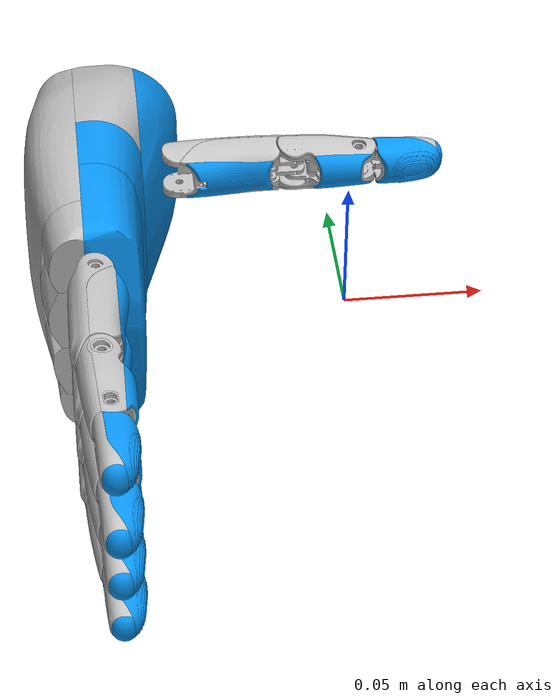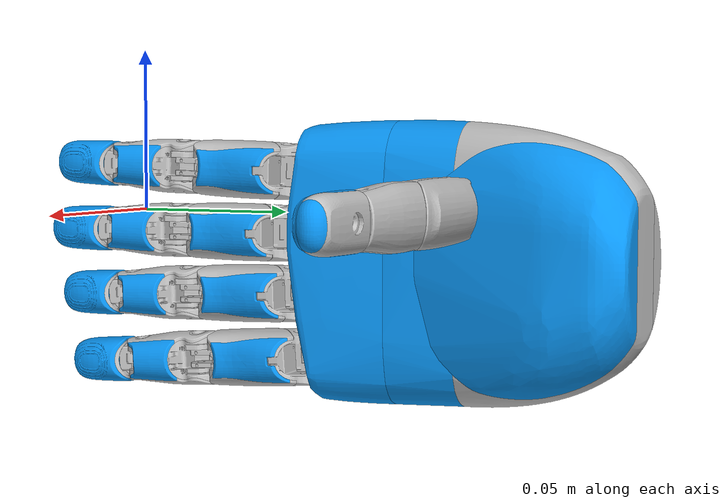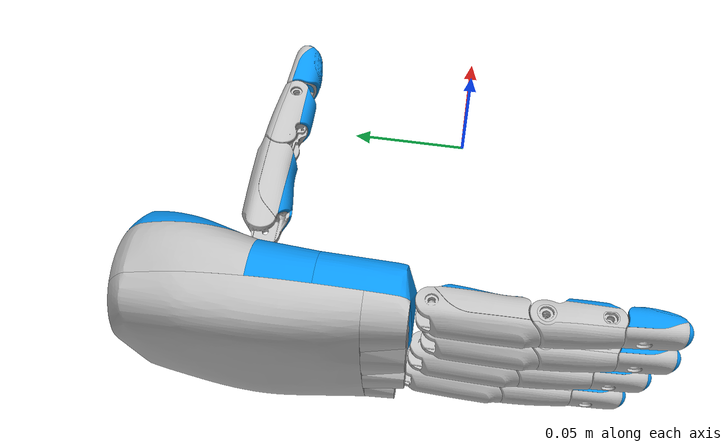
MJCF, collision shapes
<mujoco model="URDF_speedhand_0618">

  <compiler angle="radian"/>
  <option integrator="implicitfast" cone="elliptic" noslip_iterations="5" noslip_tolerance="0"/>
  <default>
    <joint damping="0.01" armature="0.0001" frictionloss="0.01"/>
      <geom solref="0.02 0.8" solimp="0.9 0.95 0.001" friction="0.8 0.05 0.005"/>
  </default>
<size njmax="10000" nconmax="5000"/>

  <asset>
    <mesh name="base_link" file="base_link.STL"/>
    <mesh name="RFF-joint1-link" file="RFF-joint1-link.STL"/>
    <mesh name="RFF-joint2-link" file="RFF-joint2-link.STL"/>
    <mesh name="RFF-joint3-link" file="RFF-joint3-link.STL"/>
    <mesh name="tip" file="tip.STL"/>
    <mesh name="nail" file="nail.STL"/>
    <mesh name="j1_0" file="j1_0.stl"/>
    <mesh name="j1_1" file="j1_1.stl"/>
    <mesh name="j1_2" file="j1_2.stl"/>
    <mesh name="j1_3" file="j1_3.STL"/>
    <mesh name="j2_0" file="j2_0.stl"/>
    <mesh name="j2_1" file="j2_1.stl"/>
    <mesh name="j2_2" file="j2_2.stl"/>
    <mesh name="j2_3" file="j2_3.STL"/>
    <mesh name="j3_1" file="j3_1.stl"/>
    <mesh name="j3_2" file="j3_2.stl"/>
    <mesh name="part_0" file="part_0.stl"/>
    <mesh name="part_1" file="part_1.stl"/>
    <mesh name="part_2" file="part_2.stl"/>
    <mesh name="part_3" file="part_3.stl"/>
    <mesh name="part_5" file="part_5.stl"/>
    <mesh name="part_11" file="part_11.stl"/>
    <mesh name="part_12" file="part_12.stl"/>
    <mesh name="part_15" file="part_15.stl"/>
    <mesh name="part_18" file="part_18.stl"/>
  </asset>

<extension>

  <plugin plugin="mujoco.pid">
    <instance name="pid_RTh">
        <config key="kp" value="24"/>
        <config key="ki" value="4.0"/>
        <config key="kd" value="0.1"/>
        <config key="imax" value="0.2"/>
        <config key="slewmax" value="6.28318"/>
    </instance>
  </plugin>

  <plugin plugin="mujoco.pid">
    <instance name="pid_RFF">
        <config key="kp" value="8"/>
        <config key="ki" value="4.0"/>
        <config key="kd" value="0.1"/>
        <config key="imax" value="0.2"/>
        <config key="slewmax" value="6.28318"/>
    </instance>
  </plugin>

  <plugin plugin="mujoco.pid">
    <instance name="pid_RMF">
        <config key="kp" value="8"/>
        <config key="ki" value="4.0"/>
        <config key="kd" value="0.1"/>
        <config key="imax" value="0.2"/>
        <config key="slewmax" value="6.28318"/>
    </instance>
  </plugin>

  <plugin plugin="mujoco.pid">
    <instance name="pid_RRF">
        <config key="kp" value="8"/>
        <config key="ki" value="4.0"/>
        <config key="kd" value="0.1"/>
        <config key="imax" value="0.2"/>
        <config key="slewmax" value="6.28318"/>
    </instance>
  </plugin>

  <plugin plugin="mujoco.pid">
    <instance name="pid_RLF">
        <config key="kp" value="8"/>
        <config key="ki" value="4.0"/>
        <config key="kd" value="0.1"/>
        <config key="imax" value="0.2"/>
        <config key="slewmax" value="6.28318"/>
    </instance>
  </plugin>

</extension>

  <worldbody>
    <body name="tcp">
      <freejoint/>
      <body name="translate" pos="-0.08 0.14 -0.02">
        <body gravcomp="1" name="base" pos="-0.204141 0.242939 -0.004">
          <geom type="mesh" rgba="0.752941 0.752941 0.752941 1" mesh="base_link" contype="0" conaffinity="0" group="0"/>
          <geom type="mesh" rgba="0.035  0.586 0.953 1" mesh="part_0" mass="0" name="pad1"/>
          <geom type="mesh" rgba="0.035  0.586 0.953 1" mesh="part_1" mass="0" name="pad2"/>
          <geom type="mesh" rgba="0.035  0.586 0.953 1" mesh="part_2" mass="0" name="pad3"/>
          <geom type="mesh" rgba="0.752941 0.752941 0.752941 0" mesh="part_3" group="3" mass="0"/>
          <geom type="mesh" rgba="0.752941 0.752941 0.752941 0" mesh="part_5" group="3" mass="0"/>
          <geom type="mesh" rgba="0.752941 0.752941 0.752941 0" mesh="part_11" group="3" mass="0"/>
          <geom type="mesh" rgba="0.752941 0.752941 0.752941 0" mesh="part_12" group="3" mass="0"/>
          <geom type="mesh" rgba="0.752941 0.752941 0.752941 0" mesh="part_15" group="3" mass="0"/>
          <geom type="mesh" rgba="0.752941 0.752941 0.752941 0" mesh="part_18" group="3" mass="0"/>

          <body gravcomp="1" name="RTh-joint1-link" pos="0.23099 -0.29978 0.017385" quat="-2.59734e-06 -0.707105 0.707108 2.59735e-06" >
            <inertial pos="-0.00052377 -0.019871 -0.0057348" quat="0.709096 0.704783 -0.0151904 -0.0152259" mass="0.0086971" diaginertia="1.77515e-06 1.59984e-06 5.58982e-07"/>
            <joint name="RTh-joint1" pos="0 0 0" axis="0 0 1" range="0 1.3"    />
            <geom type="mesh" rgba="0.752941 0.752941 0.752941 1" mesh="RFF-joint1-link" contype="0" conaffinity="0" group="0"/>
            <geom type="mesh"  rgba="0.035  0.586 0.953 1" name="ft1_a" mesh="j1_0" mass="0"/>
            <geom type="mesh"  rgba="0.752941 0.752941 0.752941 1" mesh="j1_1" mass="0" group="3"/>
            <geom type="mesh"  rgba="0.752941 0.752941 0.752941 1" mesh="j1_2" mass="0" group="3"/>
            <geom type="mesh"  rgba="0.752941 0.752941 0.752941 1" mesh="j1_3" mass="0" group="3"/>
            <body gravcomp="1" name="RTh-joint2-link" pos="0 -0.044835 -0.0022002" quat="0.999984 0 0 -0.00563597">
              <inertial pos="0.001287 -0.012538 -0.0035807" quat="0.713567 0.697486 0.0497241 0.0431685" mass="0.0053861" diaginertia="7.01461e-07 5.92479e-07 3.03151e-07"/>
              <joint name="RTh-joint2" pos="0 0 0" axis="0 0 1" range="0 1.57"  />
              <geom type="mesh" rgba="0.752941 0.752941 0.752941 1" mesh="RFF-joint2-link" contype="0" conaffinity="0" group="0"/>
              <geom type="mesh"  rgba="0.035  0.586 0.953 1" name="ft1_b" mesh="j2_0" mass="0"/>
              <geom type="mesh"  rgba="0.752941 0.752941 0.752941 1" mesh="j2_1" mass="0" group="3"/>
              <geom type="mesh"  rgba="0.752941 0.752941 0.752941 1" mesh="j2_2" mass="0" group="3"/>
              <geom type="mesh"  rgba="0.752941 0.752941 0.752941 1" mesh="j2_3" mass="0" group="3"/>
              <body gravcomp="1" name="RTh-joint3-link" pos="0.0022421 -0.0249 0.00010298" quat="0.99997 0 0 0.00771292">
                <inertial pos="0.00015718 -0.017333 -0.0036024" quat="0.707197 0.707008 0.0025457 0.00254638" mass="0.0035954" diaginertia="2.43228e-07 1.888e-07 9.66934e-08"/>
                <joint name="RTh-joint3" pos="0 0 0" axis="0 0 1" range="0 1.57"  />
                <geom type="mesh" rgba="0.752941 0.752941 0.752941 1" mesh="RFF-joint3-link" contype="0" conaffinity="0" group="0"/>
                <geom type="mesh" rgba="0.035  0.586 0.953 1" mesh="tip" name="ft1" mass="0"/>
                <geom type="mesh" rgba="0.035  0.586 0.953 1" mesh="j3_1" name="ft1_c" mass="0"/>
                <geom type="mesh" rgba="0.752941 0.752941 0.752941 1" mesh="j3_2" mass="0" group="3"/>
              </body>
            </body>
          </body>

          <body gravcomp="1" name="RFF-joint1-link" pos="0.19574 -0.37808 0.040085" quat="0.999848 -0.0174526 0 0" >
            <inertial pos="-0.00052376 -0.019871 -0.0057348" quat="0.709096 0.704783 -0.0151894 -0.0152269" mass="0.0086971" diaginertia="1.77515e-06 1.59984e-06 5.58982e-07"/>
            <joint name="RFF-joint1" pos="0 0 0" axis="0 0 1" range="0  1.3"   />
            <geom type="mesh" rgba="0.752941 0.752941 0.752941 1" mesh="RFF-joint1-link" contype="0" conaffinity="0" group="0"/>
            <geom type="mesh"  rgba="0.035  0.586 0.953 1" name="ft2_a" mesh="j1_0" mass="0"/>
            <geom type="mesh"  rgba="0.752941 0.752941 0.752941 1" mesh="j1_1" mass="0" group="3"/>
            <geom type="mesh"  rgba="0.752941 0.752941 0.752941 1" mesh="j1_2" mass="0" group="3"/>
            <geom type="mesh"  rgba="0.752941 0.752941 0.752941 1" mesh="j1_3" mass="0" group="3"/>
            <body gravcomp="1" name="RFF-joint2-link" pos="0 -0.044835 -0.0022002" quat="0.999984 0 0 -0.00563597">
              <inertial pos="0.001287 -0.012538 -0.0035807" quat="0.713567 0.697486 0.0497241 0.0431685" mass="0.0053861" diaginertia="7.01461e-07 5.92479e-07 3.03151e-07"/>
              <joint name="RFF-joint2" pos="0 0 0" axis="0 0 1" range="0 1.57"  />
              <geom type="mesh" rgba="0.752941 0.752941 0.752941 1" mesh="RFF-joint2-link" contype="0" conaffinity="0" group="0"/>
              <geom type="mesh"  rgba="0.035  0.586 0.953 1" name="ft2_b" mesh="j2_0" mass="0"/>
              <geom type="mesh"  rgba="0.752941 0.752941 0.752941 1" mesh="j2_1" mass="0" group="3"/>
              <geom type="mesh"  rgba="0.752941 0.752941 0.752941 1" mesh="j2_2" mass="0" group="3"/>
              <geom type="mesh"  rgba="0.752941 0.752941 0.752941 1" mesh="j2_3" mass="0" group="3"/>
              <body gravcomp="1" name="RFF-joint3-link" pos="0.0022421 -0.0249 0.00010298" quat="0.99997 0 0 0.00771292">
                <inertial pos="0.00015718 -0.017333 -0.0036024" quat="0.707197 0.707008 0.0025457 0.00254638" mass="0.0035954" diaginertia="2.43228e-07 1.888e-07 9.66934e-08"/>
                <joint name="RFF-joint3" pos="0 0 0" axis="0 0 1" range="0 1.57"  />
                <geom type="mesh" rgba="0.752941 0.752941 0.752941 1" mesh="RFF-joint3-link" contype="0" conaffinity="0" group="0"/>
                <geom type="mesh" rgba="0.035  0.586 0.953 1" mesh="tip" name="ft2" mass="0"/>
                <geom type="mesh" rgba="0.035  0.586 0.953 1" mesh="j3_1" name="ft2_c" mass="0"/>
                <geom type="mesh" rgba="0.752941 0.752941 0.752941 1" mesh="j3_2" mass="0" group="3"/>
              </body>
            </body>
          </body>

          <body gravcomp="1" name="RMF-joint1-link" pos="0.19574 -0.38138 0.0167">
            <inertial pos="-0.00052376 -0.019871 -0.0057348" quat="0.709096 0.704783 -0.0151894 -0.0152269" mass="0.0086971" diaginertia="1.77515e-06 1.59984e-06 5.58982e-07"/>
            <joint name="RMF-joint1" pos="0 0 0" axis="0 0 1" range="0  1.3"  />
            <geom type="mesh" rgba="0.752941 0.752941 0.752941 1" mesh="RFF-joint1-link" contype="0" conaffinity="0" group="0"/>
            <geom type="mesh"  rgba="0.035  0.586 0.953 1" name="ft3_a" mesh="j1_0" mass="0"/>
            <geom type="mesh"  rgba="0.752941 0.752941 0.752941 1" mesh="j1_1" mass="0" group="3"/>
            <geom type="mesh"  rgba="0.752941 0.752941 0.752941 1" mesh="j1_2" mass="0" group="3"/>
            <geom type="mesh"  rgba="0.752941 0.752941 0.752941 1" mesh="j1_3" mass="0" group="3"/>
            <body gravcomp="1" name="RMF-joint2-link" pos="0 -0.044835 -0.0022002" quat="0.999984 0 0 -0.00563597">
              <inertial pos="0.001287 -0.012538 -0.0035807" quat="0.713567 0.697486 0.0497241 0.0431685" mass="0.0053861" diaginertia="7.01461e-07 5.92479e-07 3.03151e-07"/>
              <joint name="RMF-joint2" pos="0 0 0" axis="0 0 1" range="0 1.57"  />
              <geom type="mesh" rgba="0.752941 0.752941 0.752941 1" mesh="RFF-joint2-link" contype="0" conaffinity="0" group="0"/>
              <geom type="mesh"  rgba="0.035  0.586 0.953 1" name="ft3_b" mesh="j2_0" mass="0"/>
              <geom type="mesh"  rgba="0.752941 0.752941 0.752941 1" mesh="j2_1" mass="0" group="3"/>
              <geom type="mesh"  rgba="0.752941 0.752941 0.752941 1" mesh="j2_2" mass="0" group="3"/>
              <geom type="mesh"  rgba="0.752941 0.752941 0.752941 1" mesh="j2_3" mass="0" group="3"/>
              <body gravcomp="1" name="RMF-joint3-link" pos="0.0022421 -0.0249 0.00010298" quat="0.99997 0 0 0.00771292">
                <inertial pos="0.00015718 -0.017333 -0.0036024" quat="0.707197 0.707008 0.0025457 0.00254638" mass="0.0035954" diaginertia="2.43228e-07 1.888e-07 9.66934e-08"/>
                <joint name="RMF-joint3" pos="0 0 0" axis="0 0 1" range="0 1.57"    />
                <geom type="mesh" rgba="0.752941 0.752941 0.752941 1" mesh="RFF-joint3-link" contype="0" conaffinity="0" group="0"/>
                <geom type="mesh" rgba="0.035  0.586 0.953 1" mesh="tip" name="ft3" mass="0"/>
                <geom type="mesh" rgba="0.035  0.586 0.953 1" mesh="j3_1" name="ft3_c" mass="0"/>
                <geom type="mesh" rgba="0.752941 0.752941 0.752941 1" mesh="j3_2" mass="0" group="3"/>
              </body>
            </body>
          </body>

          <body gravcomp="1" name="RRF-joint1-link" pos="0.19574 -0.3767 -0.0061806" quat="0.999848 0.0174526 0 0" >
            <inertial pos="-0.00052377 -0.019871 -0.0057348" quat="0.709096 0.704784 -0.0151898 -0.0152265" mass="0.0086971" diaginertia="1.77515e-06 1.59984e-06 5.58982e-07"/>
            <joint name="RRF-joint1" pos="0 0 0" axis="0 0 1" range="0  1.3"   />
            <geom type="mesh" rgba="0.752941 0.752941 0.752941 1" mesh="RFF-joint1-link" contype="0" conaffinity="0" group="0"/>
            <geom type="mesh"  rgba="0.035  0.586 0.953 1" name="ft4_a" mesh="j1_0" mass="0"/>
            <geom type="mesh"  rgba="0.752941 0.752941 0.752941 1" mesh="j1_1" mass="0" group="3"/>
            <geom type="mesh"  rgba="0.752941 0.752941 0.752941 1" mesh="j1_2" mass="0" group="3"/>
            <geom type="mesh"  rgba="0.752941 0.752941 0.752941 1" mesh="j1_3" mass="0" group="3"/>
            <body gravcomp="1" name="RRF-joint2-link" pos="0 -0.044835 -0.0022002" quat="0.999984 0 0 -0.00563597">
              <inertial pos="0.001287 -0.012538 -0.0035807" quat="0.713567 0.697486 0.0497241 0.0431685" mass="0.0053861" diaginertia="7.01461e-07 5.92479e-07 3.03151e-07"/>
              <joint name="RRF-joint2" pos="0 0 0" axis="0 0 1" range="0 1.57"  />
              <geom type="mesh" rgba="0.752941 0.752941 0.752941 1" mesh="RFF-joint2-link" contype="0" conaffinity="0" group="0"/>
              <geom type="mesh"  rgba="0.035  0.586 0.953 1" name="ft4_b" mesh="j2_0" mass="0"/>
              <geom type="mesh"  rgba="0.752941 0.752941 0.752941 1" mesh="j2_1" mass="0" group="3"/>
              <geom type="mesh"  rgba="0.752941 0.752941 0.752941 1" mesh="j2_2" mass="0" group="3"/>
              <geom type="mesh"  rgba="0.752941 0.752941 0.752941 1" mesh="j2_3" mass="0" group="3"/>
              <body gravcomp="1" name="RRF-joint3-link" pos="0.0022421 -0.0249 0.00010298" quat="0.99997 0 0 0.00771292">
                <inertial pos="0.00015718 -0.017333 -0.0036024" quat="0.707197 0.707008 0.0025457 0.00254638" mass="0.0035954" diaginertia="2.43228e-07 1.888e-07 9.66934e-08"/>
                <joint name="RRF-joint3" pos="0 0 0" axis="0 0 1" range="0 1.57"  />
                <geom type="mesh" rgba="0.752941 0.752941 0.752941 1" mesh="RFF-joint3-link" contype="0" conaffinity="0" group="0"/>
                <geom type="mesh" rgba="0.035  0.586 0.953 1" mesh="tip" name="ft4" mass="0"/>
                <geom type="mesh" rgba="0.035  0.586 0.953 1" mesh="j3_1" name="ft4_c" mass="0"/>
                <geom type="mesh" rgba="0.752941 0.752941 0.752941 1" mesh="j3_2" mass="0" group="3"/>
              </body>
            </body>
          </body>

          <body gravcomp="1" name="RLF-joint1-link" pos="0.19574 -0.3724 -0.030054" quat="0.999391 0.0348994 0 0" >
            <inertial pos="-0.00052376 -0.019871 -0.0057348" quat="0.709096 0.704784 -0.0151885 -0.0152278" mass="0.0086971" diaginertia="1.77515e-06 1.59984e-06 5.58982e-07"/>
            <joint name="RLF-joint1" pos="0 0 0" axis="0 0 1" range="0  1.3"  />
            <geom type="mesh" rgba="0.752941 0.752941 0.752941 1" mesh="RFF-joint1-link" contype="0" conaffinity="0" group="0"/>
            <geom type="mesh"  rgba="0.035  0.586 0.953 1" name="ft5_a" mesh="j1_0" mass="0"/>
            <geom type="mesh"  rgba="0.752941 0.752941 0.752941 1" mesh="j1_1" mass="0" group="3"/>
            <geom type="mesh"  rgba="0.752941 0.752941 0.752941 1" mesh="j1_2" mass="0" group="3"/>
            <geom type="mesh"  rgba="0.752941 0.752941 0.752941 1" mesh="j1_3" mass="0" group="3"/>
            <body gravcomp="1" name="RLF-joint2-link" pos="0 -0.044835 -0.0022002" quat="0.999984 0 0 -0.00563597">
              <inertial pos="0.001287 -0.012538 -0.0035807" quat="0.713567 0.697486 0.0497241 0.0431685" mass="0.0053861" diaginertia="7.01461e-07 5.92479e-07 3.03151e-07"/>
              <joint name="RLF-joint2" pos="0 0 0" axis="0 0 1" range="0 1.57"   />
              <geom type="mesh" rgba="0.752941 0.752941 0.752941 1" mesh="RFF-joint2-link" contype="0" conaffinity="0" group="0"/>
              <geom type="mesh"  rgba="0.035  0.586 0.953 1" name="ft5_b" mesh="j2_0" mass="0"/>
              <geom type="mesh"  rgba="0.752941 0.752941 0.752941 1" mesh="j2_1" mass="0" group="3"/>
              <geom type="mesh"  rgba="0.752941 0.752941 0.752941 1" mesh="j2_2" mass="0" group="3"/>
              <geom type="mesh"  rgba="0.752941 0.752941 0.752941 1" mesh="j2_3" mass="0" group="3"/>
              <body gravcomp="1" name="RLF-joint3-link" pos="0.0022421 -0.0249 0.00010298" quat="0.99997 0 0 0.00771292">
                <inertial pos="0.00015718 -0.017333 -0.0036024" quat="0.707197 0.707008 0.0025457 0.00254638" mass="0.0035954" diaginertia="2.43228e-07 1.888e-07 9.66934e-08"/>
                <joint name="RLF-joint3" pos="0 0 0" axis="0 0 1" range="0 1.57"  />
                <geom type="mesh" rgba="0.752941 0.752941 0.752941 1" mesh="RFF-joint3-link" contype="0" conaffinity="0" group="0"/>
                <geom type="mesh" rgba="0.035  0.586 0.953 1" mesh="tip" name="ft5" mass="0"/>
                <geom type="mesh" rgba="0.035  0.586 0.953 1" mesh="j3_1" name="ft5_c" mass="0"/>
                <geom type="mesh" rgba="0.752941 0.752941 0.752941 1" mesh="j3_2" mass="0" group="3"/>
              </body>
            </body>
          </body>
        </body>
      </body>
    </body>
    <body gravcomp="1" mocap="true" name="mocap" pos="0 0 0">
    </body>
  </worldbody>

 <actuator>

  <plugin name="RTh_act"
          plugin="mujoco.pid"
          instance="pid_RTh"
          joint="RTh-joint1"
          ctrlrange="0 0.9"
          forcerange="-1.5 1.5"
          dyntype="none"
          actdim="2"/>

  <plugin name="RFF_act"
          plugin="mujoco.pid"
          instance="pid_RFF"
          joint="RFF-joint1"
          ctrlrange="0 1.35"
          forcerange="-1.5 1.5"
          dyntype="none"
          actdim="2"/>

  <plugin name="RMF_act"
          plugin="mujoco.pid"
          instance="pid_RMF"
          joint="RMF-joint1"
          ctrlrange="0 1.35"
          forcerange="-1.5 1.5"
          dyntype="none"
          actdim="2"/>

  <plugin name="RRF_act"
          plugin="mujoco.pid"
          instance="pid_RRF"
          joint="RRF-joint1"
          ctrlrange="0 1.35"
          forcerange="-1.5 1.5"
          dyntype="none"
          actdim="2"/>

  <plugin name="RLF_act"
          plugin="mujoco.pid"
          instance="pid_RLF"
          joint="RLF-joint1"
          ctrlrange="0 1.35"
          forcerange="-1.5 1.5"
          dyntype="none"
          actdim="2"/>
</actuator>

  <contact>
    <exclude body1="RFF-joint1-link" body2="base"/>
    <exclude body1="RLF-joint1-link" body2="base"/>
    <exclude body1="RRF-joint1-link" body2="base"/>
    <exclude body1="RMF-joint1-link" body2="base"/>
    <exclude body1="RTh-joint1-link" body2="base"/>
  </contact>

  <equality>
    <weld body1="mocap" body2="tcp"  solref="0.01 1" solimp="0.9 0.99 0.001" />

      <!-- Thumb -->
  <joint joint2="RTh-joint1" joint1="RTh-joint2" polycoef="0 0.7 0 0 0"/>
  <joint joint2="RTh-joint1" joint1="RTh-joint3" polycoef="0 0.5 0 0 0"/>

  <!-- Index -->
  <joint joint2="RFF-joint1" joint1="RFF-joint2" polycoef="0 0.9 0 0 0"/>
  <joint joint2="RFF-joint1" joint1="RFF-joint3" polycoef="0 0.3 0 0 0"/>

  <!-- Middle -->
  <joint joint2="RMF-joint1" joint1="RMF-joint2" polycoef="0 0.9 0 0 0"/>
  <joint joint2="RMF-joint1" joint1="RMF-joint3" polycoef="0 0.3 0 0 0"/>

  <!-- Ring -->
  <joint joint2="RRF-joint1" joint1="RRF-joint2" polycoef="0 0.9 0 0 0"/>
  <joint joint2="RRF-joint1" joint1="RRF-joint3" polycoef="0 0.3 0 0 0"/>

  <!-- Little -->
  <joint joint2="RLF-joint1" joint1="RLF-joint2" polycoef="0 0.9 0 0 0"/>
  <joint joint2="RLF-joint1" joint1="RLF-joint3" polycoef="0 0.3 0 0 0"/>

  </equality>

</mujoco>
